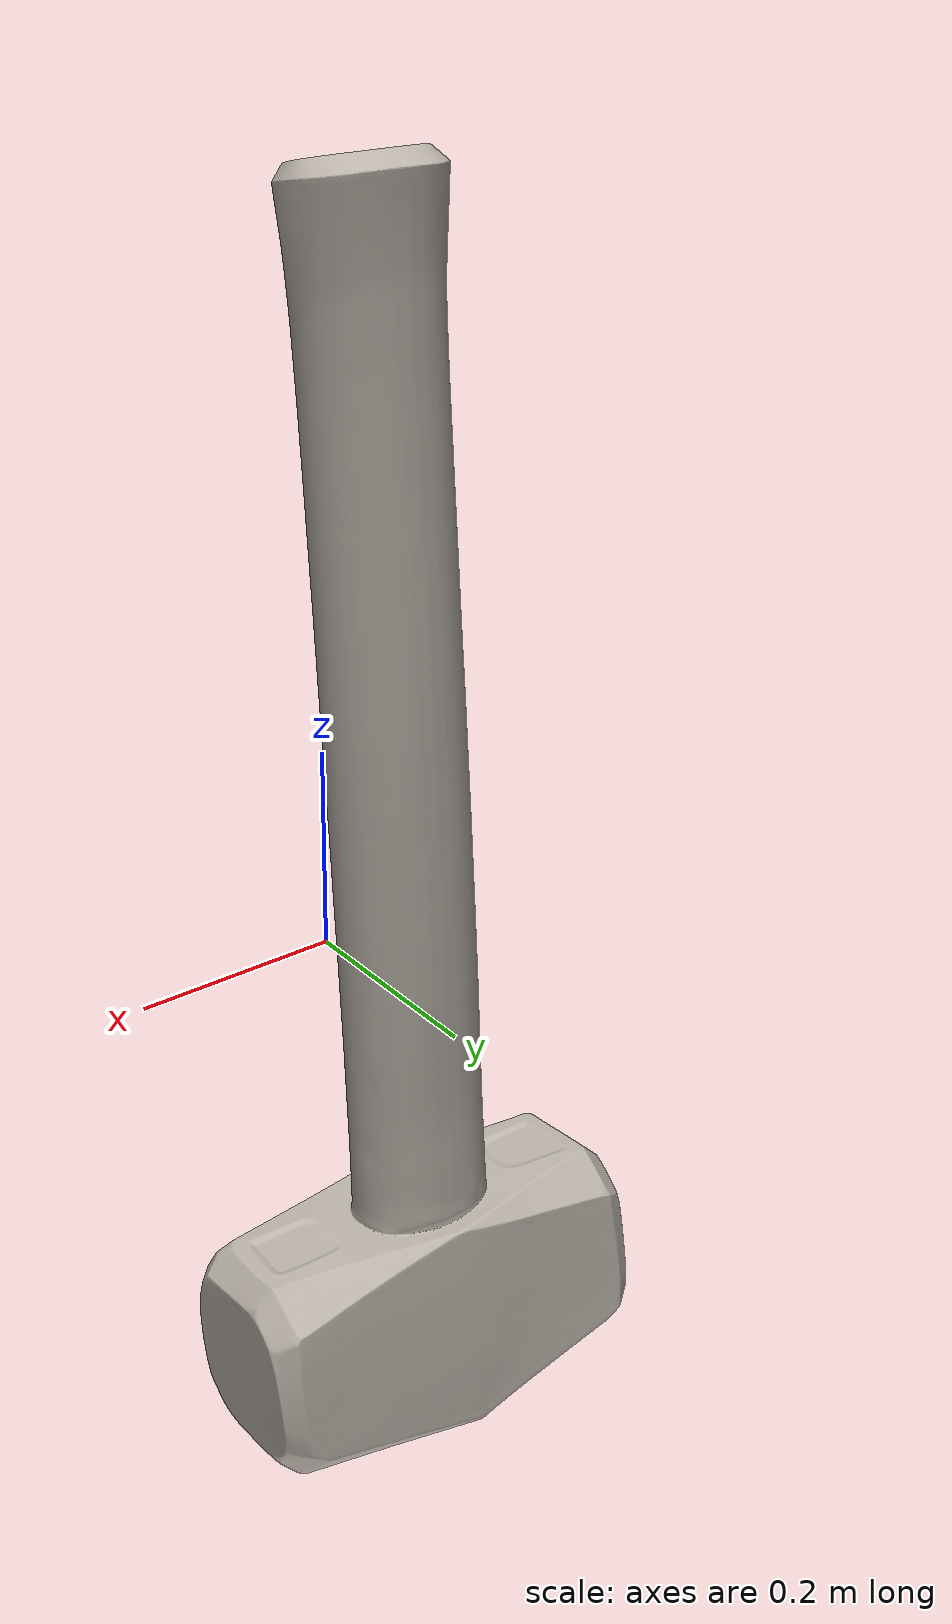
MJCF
<mujoco model="hammer_1">
  <asset>
    <mesh file="visual/86b394b12876a673a62c16e1690c45ac.obj" name="hammer_vis" scale="1.0 1.0 1.0"/>
    <mesh file="collision/collision_part_0.obj" name="hammer_coll_0" scale="1.0 1.0 1.0"/>
    <mesh file="collision/collision_part_1.obj" name="hammer_coll_1" scale="1.0 1.0 1.0"/>
    <texture type="2d" name="hammer_tex" file="visual/texture_pbr_20250901.png"/>
    <material name="hammer_mat" texture="hammer_tex" specular="0.5" shininess="0.3"/>
  </asset>
  <worldbody>
    <body>
      <body name="object">
        <geom solimp="0.998 0.998 0.001" solref="0.001 1" density="100" friction="0.95 0.3 0.1"
              type="mesh" mesh="hammer_vis" conaffinity="0" contype="0" group="1" material="hammer_mat"/>
        <geom solimp="0.998 0.998 0.001" solref="0.001 1" density="100" friction="0.95 0.3 0.1"
              type="mesh" mesh="hammer_coll_0" group="0" rgba="0.8 0.8 0.8 0.0"/>
        <geom solimp="0.998 0.998 0.001" solref="0.001 1" density="100" friction="0.95 0.3 0.1"
              type="mesh" mesh="hammer_coll_1" group="0" rgba="0.8 0.8 0.8 0.0"/>
      </body>
      <!-- bottom/top along Z (handle up, head down); horizontal_radius from head width -->
      <site rgba="0 0 0 0" size="0.005" pos="0.0 0.128 -0.436" name="bottom_site"/>
      <site rgba="0 0 0 0" size="0.005" pos="0.0 0.128 0.733" name="top_site"/>
      <site rgba="0 0 0 0" size="0.005" pos="0.207 0.128 -0.314" name="horizontal_radius_site"/>
    </body>
  </worldbody>
</mujoco>
